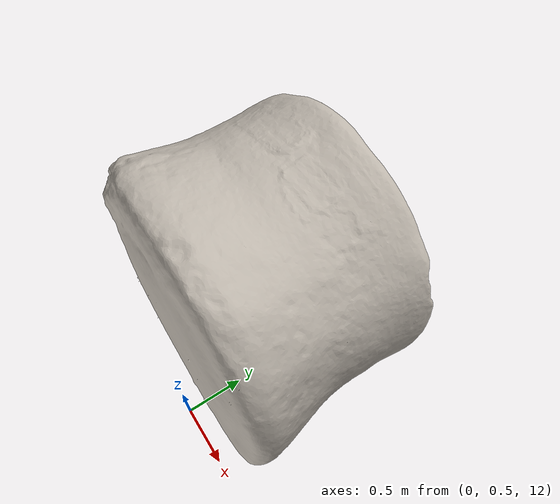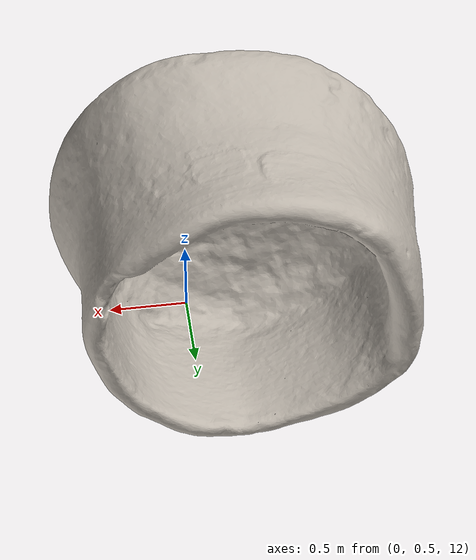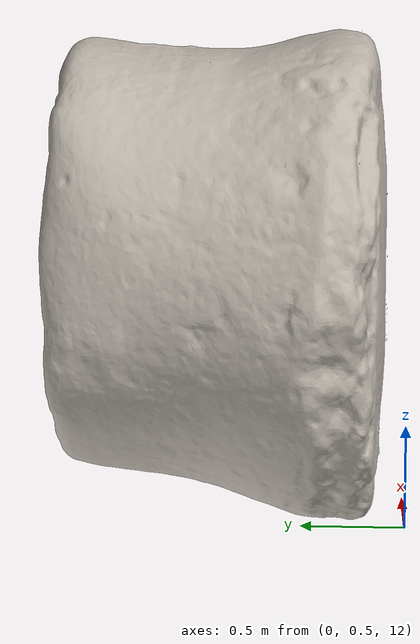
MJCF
<mujoco model="cd6bb83c37374fe9ba15cbc3451e5180">
  <default>
    <default class="visual">
      <geom group="2" type="mesh" contype="0" conaffinity="0"/>
    </default>
    <default class="collision">
      <geom group="3" type="mesh"/>
    </default>
  </default>
  <asset>
    <texture type="2d" name="3D_Model" file="3D_Model.png"/>
    <material name="3D_Model" texture="3D_Model" specular="0.4000000000000001" shininess="0.001"/>
    <mesh file="cd6bb83c37374fe9ba15cbc3451e5180/cd6bb83c37374fe9ba15cbc3451e5180.obj"/>
    <mesh file="cd6bb83c37374fe9ba15cbc3451e5180/cd6bb83c37374fe9ba15cbc3451e5180_collision_0.obj"/>
    <mesh file="cd6bb83c37374fe9ba15cbc3451e5180/cd6bb83c37374fe9ba15cbc3451e5180_collision_1.obj"/>
    <mesh file="cd6bb83c37374fe9ba15cbc3451e5180/cd6bb83c37374fe9ba15cbc3451e5180_collision_2.obj"/>
    <mesh file="cd6bb83c37374fe9ba15cbc3451e5180/cd6bb83c37374fe9ba15cbc3451e5180_collision_3.obj"/>
    <mesh file="cd6bb83c37374fe9ba15cbc3451e5180/cd6bb83c37374fe9ba15cbc3451e5180_collision_4.obj"/>
    <mesh file="cd6bb83c37374fe9ba15cbc3451e5180/cd6bb83c37374fe9ba15cbc3451e5180_collision_5.obj"/>
    <mesh file="cd6bb83c37374fe9ba15cbc3451e5180/cd6bb83c37374fe9ba15cbc3451e5180_collision_6.obj"/>
    <mesh file="cd6bb83c37374fe9ba15cbc3451e5180/cd6bb83c37374fe9ba15cbc3451e5180_collision_7.obj"/>
    <mesh file="cd6bb83c37374fe9ba15cbc3451e5180/cd6bb83c37374fe9ba15cbc3451e5180_collision_8.obj"/>
    <mesh file="cd6bb83c37374fe9ba15cbc3451e5180/cd6bb83c37374fe9ba15cbc3451e5180_collision_9.obj"/>
    <mesh file="cd6bb83c37374fe9ba15cbc3451e5180/cd6bb83c37374fe9ba15cbc3451e5180_collision_10.obj"/>
    <mesh file="cd6bb83c37374fe9ba15cbc3451e5180/cd6bb83c37374fe9ba15cbc3451e5180_collision_11.obj"/>
    <mesh file="cd6bb83c37374fe9ba15cbc3451e5180/cd6bb83c37374fe9ba15cbc3451e5180_collision_12.obj"/>
    <mesh file="cd6bb83c37374fe9ba15cbc3451e5180/cd6bb83c37374fe9ba15cbc3451e5180_collision_13.obj"/>
    <mesh file="cd6bb83c37374fe9ba15cbc3451e5180/cd6bb83c37374fe9ba15cbc3451e5180_collision_14.obj"/>
    <mesh file="cd6bb83c37374fe9ba15cbc3451e5180/cd6bb83c37374fe9ba15cbc3451e5180_collision_15.obj"/>
    <mesh file="cd6bb83c37374fe9ba15cbc3451e5180/cd6bb83c37374fe9ba15cbc3451e5180_collision_16.obj"/>
    <mesh file="cd6bb83c37374fe9ba15cbc3451e5180/cd6bb83c37374fe9ba15cbc3451e5180_collision_17.obj"/>
    <mesh file="cd6bb83c37374fe9ba15cbc3451e5180/cd6bb83c37374fe9ba15cbc3451e5180_collision_18.obj"/>
    <mesh file="cd6bb83c37374fe9ba15cbc3451e5180/cd6bb83c37374fe9ba15cbc3451e5180_collision_19.obj"/>
    <mesh file="cd6bb83c37374fe9ba15cbc3451e5180/cd6bb83c37374fe9ba15cbc3451e5180_collision_20.obj"/>
    <mesh file="cd6bb83c37374fe9ba15cbc3451e5180/cd6bb83c37374fe9ba15cbc3451e5180_collision_21.obj"/>
    <mesh file="cd6bb83c37374fe9ba15cbc3451e5180/cd6bb83c37374fe9ba15cbc3451e5180_collision_22.obj"/>
    <mesh file="cd6bb83c37374fe9ba15cbc3451e5180/cd6bb83c37374fe9ba15cbc3451e5180_collision_23.obj"/>
    <mesh file="cd6bb83c37374fe9ba15cbc3451e5180/cd6bb83c37374fe9ba15cbc3451e5180_collision_24.obj"/>
    <mesh file="cd6bb83c37374fe9ba15cbc3451e5180/cd6bb83c37374fe9ba15cbc3451e5180_collision_25.obj"/>
    <mesh file="cd6bb83c37374fe9ba15cbc3451e5180/cd6bb83c37374fe9ba15cbc3451e5180_collision_26.obj"/>
    <mesh file="cd6bb83c37374fe9ba15cbc3451e5180/cd6bb83c37374fe9ba15cbc3451e5180_collision_27.obj"/>
    <mesh file="cd6bb83c37374fe9ba15cbc3451e5180/cd6bb83c37374fe9ba15cbc3451e5180_collision_28.obj"/>
    <mesh file="cd6bb83c37374fe9ba15cbc3451e5180/cd6bb83c37374fe9ba15cbc3451e5180_collision_29.obj"/>
    <mesh file="cd6bb83c37374fe9ba15cbc3451e5180/cd6bb83c37374fe9ba15cbc3451e5180_collision_30.obj"/>
    <mesh file="cd6bb83c37374fe9ba15cbc3451e5180/cd6bb83c37374fe9ba15cbc3451e5180_collision_31.obj"/>
    <mesh file="cd6bb83c37374fe9ba15cbc3451e5180/cd6bb83c37374fe9ba15cbc3451e5180_collision_32.obj"/>
    <mesh file="cd6bb83c37374fe9ba15cbc3451e5180/cd6bb83c37374fe9ba15cbc3451e5180_collision_33.obj"/>
    <mesh file="cd6bb83c37374fe9ba15cbc3451e5180/cd6bb83c37374fe9ba15cbc3451e5180_collision_34.obj"/>
    <mesh file="cd6bb83c37374fe9ba15cbc3451e5180/cd6bb83c37374fe9ba15cbc3451e5180_collision_35.obj"/>
    <mesh file="cd6bb83c37374fe9ba15cbc3451e5180/cd6bb83c37374fe9ba15cbc3451e5180_collision_36.obj"/>
    <mesh file="cd6bb83c37374fe9ba15cbc3451e5180/cd6bb83c37374fe9ba15cbc3451e5180_collision_37.obj"/>
    <mesh file="cd6bb83c37374fe9ba15cbc3451e5180/cd6bb83c37374fe9ba15cbc3451e5180_collision_38.obj"/>
    <mesh file="cd6bb83c37374fe9ba15cbc3451e5180/cd6bb83c37374fe9ba15cbc3451e5180_collision_39.obj"/>
    <mesh file="cd6bb83c37374fe9ba15cbc3451e5180/cd6bb83c37374fe9ba15cbc3451e5180_collision_40.obj"/>
    <mesh file="cd6bb83c37374fe9ba15cbc3451e5180/cd6bb83c37374fe9ba15cbc3451e5180_collision_41.obj"/>
    <mesh file="cd6bb83c37374fe9ba15cbc3451e5180/cd6bb83c37374fe9ba15cbc3451e5180_collision_42.obj"/>
    <mesh file="cd6bb83c37374fe9ba15cbc3451e5180/cd6bb83c37374fe9ba15cbc3451e5180_collision_43.obj"/>
    <mesh file="cd6bb83c37374fe9ba15cbc3451e5180/cd6bb83c37374fe9ba15cbc3451e5180_collision_44.obj"/>
    <mesh file="cd6bb83c37374fe9ba15cbc3451e5180/cd6bb83c37374fe9ba15cbc3451e5180_collision_45.obj"/>
    <mesh file="cd6bb83c37374fe9ba15cbc3451e5180/cd6bb83c37374fe9ba15cbc3451e5180_collision_46.obj"/>
    <mesh file="cd6bb83c37374fe9ba15cbc3451e5180/cd6bb83c37374fe9ba15cbc3451e5180_collision_47.obj"/>
    <mesh file="cd6bb83c37374fe9ba15cbc3451e5180/cd6bb83c37374fe9ba15cbc3451e5180_collision_48.obj"/>
    <mesh file="cd6bb83c37374fe9ba15cbc3451e5180/cd6bb83c37374fe9ba15cbc3451e5180_collision_49.obj"/>
    <mesh file="cd6bb83c37374fe9ba15cbc3451e5180/cd6bb83c37374fe9ba15cbc3451e5180_collision_50.obj"/>
    <mesh file="cd6bb83c37374fe9ba15cbc3451e5180/cd6bb83c37374fe9ba15cbc3451e5180_collision_51.obj"/>
    <mesh file="cd6bb83c37374fe9ba15cbc3451e5180/cd6bb83c37374fe9ba15cbc3451e5180_collision_52.obj"/>
    <mesh file="cd6bb83c37374fe9ba15cbc3451e5180/cd6bb83c37374fe9ba15cbc3451e5180_collision_53.obj"/>
    <mesh file="cd6bb83c37374fe9ba15cbc3451e5180/cd6bb83c37374fe9ba15cbc3451e5180_collision_54.obj"/>
    <mesh file="cd6bb83c37374fe9ba15cbc3451e5180/cd6bb83c37374fe9ba15cbc3451e5180_collision_55.obj"/>
  </asset>
  <worldbody>
    <geom material="3D_Model" mesh="cd6bb83c37374fe9ba15cbc3451e5180" class="visual" mass="1"/>
    <geom mesh="cd6bb83c37374fe9ba15cbc3451e5180_collision_0" rgba="0.44738014480620836 0.8730838891247129 0.7194572993607274 1" class="collision" density="100"/>
    <geom mesh="cd6bb83c37374fe9ba15cbc3451e5180_collision_1" rgba="0.16495445294451327 0.5479098223116645 0.8511510349830052 1" class="collision" density="100"/>
    <geom mesh="cd6bb83c37374fe9ba15cbc3451e5180_collision_2" rgba="0.340345594408877 0.5093930665352953 0.5535156775073344 1" class="collision" density="100"/>
    <geom mesh="cd6bb83c37374fe9ba15cbc3451e5180_collision_3" rgba="0.9849515490950133 0.2881223275358499 0.5758851503928527 1" class="collision" density="100"/>
    <geom mesh="cd6bb83c37374fe9ba15cbc3451e5180_collision_4" rgba="0.019297027619489482 0.6475602274381385 0.011516068454515693 1" class="collision" density="100"/>
    <geom mesh="cd6bb83c37374fe9ba15cbc3451e5180_collision_5" rgba="0.4687396863047757 0.4680074735614974 0.2523176753361954 1" class="collision" density="100"/>
    <geom mesh="cd6bb83c37374fe9ba15cbc3451e5180_collision_6" rgba="0.20943096942785755 0.6546672155866562 0.31972990290282455 1" class="collision" density="100"/>
    <geom mesh="cd6bb83c37374fe9ba15cbc3451e5180_collision_7" rgba="0.9695232774246909 0.30997801371538014 0.3679306454212815 1" class="collision" density="100"/>
    <geom mesh="cd6bb83c37374fe9ba15cbc3451e5180_collision_8" rgba="0.9758158025037154 0.4123129803869261 0.4539305314806873 1" class="collision" density="100"/>
    <geom mesh="cd6bb83c37374fe9ba15cbc3451e5180_collision_9" rgba="0.8649510706455564 0.8755147139400477 0.9409734152707444 1" class="collision" density="100"/>
    <geom mesh="cd6bb83c37374fe9ba15cbc3451e5180_collision_10" rgba="0.29009968638054007 0.06749933340218928 0.9139036103208181 1" class="collision" density="100"/>
    <geom mesh="cd6bb83c37374fe9ba15cbc3451e5180_collision_11" rgba="0.3653233404536116 0.05527126012082728 0.5242810121166266 1" class="collision" density="100"/>
    <geom mesh="cd6bb83c37374fe9ba15cbc3451e5180_collision_12" rgba="0.5278030799390989 0.5088842049507699 0.45056499045098575 1" class="collision" density="100"/>
    <geom mesh="cd6bb83c37374fe9ba15cbc3451e5180_collision_13" rgba="0.26181148647469277 0.8316961863008157 0.42633972598991976 1" class="collision" density="100"/>
    <geom mesh="cd6bb83c37374fe9ba15cbc3451e5180_collision_14" rgba="0.7899275623874236 0.252518934556636 0.5727004594549734 1" class="collision" density="100"/>
    <geom mesh="cd6bb83c37374fe9ba15cbc3451e5180_collision_15" rgba="0.6869566691964962 0.03991227302204681 0.5218580810738791 1" class="collision" density="100"/>
    <geom mesh="cd6bb83c37374fe9ba15cbc3451e5180_collision_16" rgba="0.20231363515383705 0.1606690818059453 0.15651667836321848 1" class="collision" density="100"/>
    <geom mesh="cd6bb83c37374fe9ba15cbc3451e5180_collision_17" rgba="0.13701450488479772 0.9575339753350364 0.7283919818795838 1" class="collision" density="100"/>
    <geom mesh="cd6bb83c37374fe9ba15cbc3451e5180_collision_18" rgba="0.49820687753742854 0.47256916481621447 0.057159881917716815 1" class="collision" density="100"/>
    <geom mesh="cd6bb83c37374fe9ba15cbc3451e5180_collision_19" rgba="0.9239806093053403 0.7480230691703543 0.9432016649544234 1" class="collision" density="100"/>
    <geom mesh="cd6bb83c37374fe9ba15cbc3451e5180_collision_20" rgba="0.03208524304864091 0.7634432471456356 0.4485758014585427 1" class="collision" density="100"/>
    <geom mesh="cd6bb83c37374fe9ba15cbc3451e5180_collision_21" rgba="0.5686925173553661 0.29811595235324695 0.626741798649941 1" class="collision" density="100"/>
    <geom mesh="cd6bb83c37374fe9ba15cbc3451e5180_collision_22" rgba="0.10000401480484822 0.8994987118458674 0.7937266757692164 1" class="collision" density="100"/>
    <geom mesh="cd6bb83c37374fe9ba15cbc3451e5180_collision_23" rgba="0.3462682910401411 0.07678110775029501 0.035405043028379546 1" class="collision" density="100"/>
    <geom mesh="cd6bb83c37374fe9ba15cbc3451e5180_collision_24" rgba="0.7596099335100455 0.7243670072581442 0.7486365205026555 1" class="collision" density="100"/>
    <geom mesh="cd6bb83c37374fe9ba15cbc3451e5180_collision_25" rgba="0.37620492867514344 0.8819660020572369 0.43965464207480054 1" class="collision" density="100"/>
    <geom mesh="cd6bb83c37374fe9ba15cbc3451e5180_collision_26" rgba="0.8814890173453722 0.18567567171098476 0.31142746096181984 1" class="collision" density="100"/>
    <geom mesh="cd6bb83c37374fe9ba15cbc3451e5180_collision_27" rgba="0.0408807676165871 0.8764663021281239 0.5423671014611341 1" class="collision" density="100"/>
    <geom mesh="cd6bb83c37374fe9ba15cbc3451e5180_collision_28" rgba="0.08236491485332387 0.6027265044195722 0.2462925471364159 1" class="collision" density="100"/>
    <geom mesh="cd6bb83c37374fe9ba15cbc3451e5180_collision_29" rgba="0.28454884031792804 0.9969636843422073 0.6275241963468837 1" class="collision" density="100"/>
    <geom mesh="cd6bb83c37374fe9ba15cbc3451e5180_collision_30" rgba="0.8934355561658827 0.7065437601389998 0.34595772711145223 1" class="collision" density="100"/>
    <geom mesh="cd6bb83c37374fe9ba15cbc3451e5180_collision_31" rgba="0.10716717196139658 0.2679650284448579 0.7673851993867572 1" class="collision" density="100"/>
    <geom mesh="cd6bb83c37374fe9ba15cbc3451e5180_collision_32" rgba="0.31573938859659134 0.21474557673766614 0.4513548440614117 1" class="collision" density="100"/>
    <geom mesh="cd6bb83c37374fe9ba15cbc3451e5180_collision_33" rgba="0.18569657037771847 0.8152061785604395 0.42455727073313954 1" class="collision" density="100"/>
    <geom mesh="cd6bb83c37374fe9ba15cbc3451e5180_collision_34" rgba="0.22467210382491554 0.4069424310490185 0.1625907281150506 1" class="collision" density="100"/>
    <geom mesh="cd6bb83c37374fe9ba15cbc3451e5180_collision_35" rgba="0.7267812054308397 0.010658842996808082 0.6248305996624264 1" class="collision" density="100"/>
    <geom mesh="cd6bb83c37374fe9ba15cbc3451e5180_collision_36" rgba="0.6518005259273264 0.7002861278547984 0.7188282252131105 1" class="collision" density="100"/>
    <geom mesh="cd6bb83c37374fe9ba15cbc3451e5180_collision_37" rgba="0.2615564641845807 0.3534680941605679 0.24357320830004914 1" class="collision" density="100"/>
    <geom mesh="cd6bb83c37374fe9ba15cbc3451e5180_collision_38" rgba="0.8731049530828465 0.5411941375261081 0.14392483042227855 1" class="collision" density="100"/>
    <geom mesh="cd6bb83c37374fe9ba15cbc3451e5180_collision_39" rgba="0.2198693122853712 0.9686132394496295 0.5685635416762181 1" class="collision" density="100"/>
    <geom mesh="cd6bb83c37374fe9ba15cbc3451e5180_collision_40" rgba="0.039723326306471685 0.01473985870853789 0.9603447155129606 1" class="collision" density="100"/>
    <geom mesh="cd6bb83c37374fe9ba15cbc3451e5180_collision_41" rgba="0.6438756219229028 0.5039071362529804 0.19893711386188329 1" class="collision" density="100"/>
    <geom mesh="cd6bb83c37374fe9ba15cbc3451e5180_collision_42" rgba="0.690772876242798 0.6715247412044606 0.38671208475281893 1" class="collision" density="100"/>
    <geom mesh="cd6bb83c37374fe9ba15cbc3451e5180_collision_43" rgba="0.3735713360222105 0.031903035360000276 0.41536587321261786 1" class="collision" density="100"/>
    <geom mesh="cd6bb83c37374fe9ba15cbc3451e5180_collision_44" rgba="0.7619764235659002 0.019756641584711354 0.5356850300584179 1" class="collision" density="100"/>
    <geom mesh="cd6bb83c37374fe9ba15cbc3451e5180_collision_45" rgba="0.9399725872816251 0.16326374716662184 0.20067611173676114 1" class="collision" density="100"/>
    <geom mesh="cd6bb83c37374fe9ba15cbc3451e5180_collision_46" rgba="0.5784665268521282 0.7807799654751846 0.9627798727806794 1" class="collision" density="100"/>
    <geom mesh="cd6bb83c37374fe9ba15cbc3451e5180_collision_47" rgba="0.006095733183598795 0.7075446284886001 0.6957669933089808 1" class="collision" density="100"/>
    <geom mesh="cd6bb83c37374fe9ba15cbc3451e5180_collision_48" rgba="0.3461954610008813 0.24570415549539248 0.8616640291258176 1" class="collision" density="100"/>
    <geom mesh="cd6bb83c37374fe9ba15cbc3451e5180_collision_49" rgba="0.5195586949872056 0.23632941139203445 0.12774600521369261 1" class="collision" density="100"/>
    <geom mesh="cd6bb83c37374fe9ba15cbc3451e5180_collision_50" rgba="0.025566904226406284 0.5521536985594537 0.1477683527067295 1" class="collision" density="100"/>
    <geom mesh="cd6bb83c37374fe9ba15cbc3451e5180_collision_51" rgba="0.031135968231096656 0.7128943539094867 0.5807272581609021 1" class="collision" density="100"/>
    <geom mesh="cd6bb83c37374fe9ba15cbc3451e5180_collision_52" rgba="0.6632196653350494 0.0675338507874721 0.33529049029363767 1" class="collision" density="100"/>
    <geom mesh="cd6bb83c37374fe9ba15cbc3451e5180_collision_53" rgba="0.3050257941515532 0.7095748821744605 0.5768642639570434 1" class="collision" density="100"/>
    <geom mesh="cd6bb83c37374fe9ba15cbc3451e5180_collision_54" rgba="0.630520973038516 0.8090526572239002 0.8053899899762372 1" class="collision" density="100"/>
    <geom mesh="cd6bb83c37374fe9ba15cbc3451e5180_collision_55" rgba="0.4142617696259523 0.8868653624969002 0.15046906395040494 1" class="collision" density="100"/>
  </worldbody>
</mujoco>
